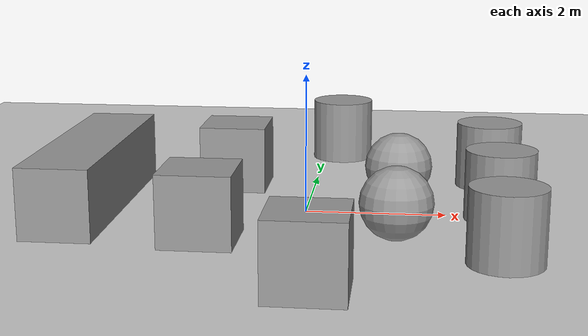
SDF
<sdf version="1.7">
 <world name="default">
  <light name="sun" type="directional">
   <pose>0 0 10 0 -0 0</pose>
   <diffuse>0.8 0.8 0.8 1</diffuse>
   <specular>0.2 0.2 0.2 1</specular>
   <attenuation>
    <range>1000</range>
    <constant>0.9</constant>
    <linear>0.01</linear>
    <quadratic>0.001</quadratic>
   </attenuation>
   <direction>-0.5 0.1 -0.9</direction>
   <spot><inner_angle>0</inner_angle><outer_angle>0</outer_angle><falloff>0</falloff></spot>
  </light>
  <model name="ground_plane">
   <static>1</static>
   <link name="link">
    <collision name="collision">
     <geometry><plane><normal>0 0 1</normal><size>100 100</size></plane></geometry>
     <surface>
      <contact><collide_bitmask>65535</collide_bitmask></contact>
      <friction><ode><mu>100</mu><mu2>50</mu2></ode></friction>
     </surface>
    </collision>
    <visual name="visual">
     <cast_shadows>0</cast_shadows>
     <geometry><plane><normal>0 0 1</normal><size>100 100</size></plane></geometry>
     <material>
      <script><uri>file://media/materials/scripts/gazebo.material</uri><name>Gazebo/Grey</name></script>
     </material>
    </visual>
   </link>
  </model>
  <gravity>0 0 -9.8</gravity>
  <magnetic_field>6e-06 2.3e-05 -4.2e-05</magnetic_field>
  <atmosphere type="adiabatic"/>
  <physics type="ode">
   <max_step_size>0.001</max_step_size>
   <real_time_factor>1</real_time_factor>
   <real_time_update_rate>1000</real_time_update_rate>
  </physics>
  <scene><ambient>0.4 0.4 0.4 1</ambient><background>0.7 0.7 0.7 1</background><shadows>1</shadows></scene>
  <audio><device>default</device></audio>
  <spherical_coordinates>
   <surface_model>EARTH_WGS84</surface_model>
   <latitude_deg>0</latitude_deg>
   <longitude_deg>0</longitude_deg>
   <elevation>0</elevation>
   <heading_deg>0</heading_deg>
  </spherical_coordinates>
  <model name="unit_box">
   <pose>-1.22919 1.42375 0.499995 0 -1e-05 0</pose>
   <link name="link">
    <inertial>
     <mass>1</mass>
     <inertia>
      <ixx>0.166667</ixx>
      <ixy>0</ixy>
      <ixz>0</ixz>
      <iyy>0.166667</iyy>
      <iyz>0</iyz>
      <izz>0.166667</izz>
     </inertia>
    </inertial>
    <collision name="collision"><geometry><box><size>1 1 1</size></box></geometry></collision>
    <visual name="visual">
     <geometry><box><size>1 1 1</size></box></geometry>
     <material>
      <script><name>Gazebo/Grey</name><uri>file://media/materials/scripts/gazebo.material</uri></script>
     </material>
    </visual>
   </link>
  </model>
  <model name="unit_sphere">
   <pose>1.30871 0.862647 0.5 0 -0 0</pose>
   <link name="link">
    <inertial>
     <mass>1</mass>
     <inertia><ixx>0.1</ixx><ixy>0</ixy><ixz>0</ixz><iyy>0.1</iyy><iyz>0</iyz><izz>0.1</izz></inertia>
    </inertial>
    <collision name="collision"><geometry><sphere><radius>0.5</radius></sphere></geometry></collision>
    <visual name="visual">
     <geometry><sphere><radius>0.5</radius></sphere></geometry>
     <material>
      <script><name>Gazebo/Grey</name><uri>file://media/materials/scripts/gazebo.material</uri></script>
     </material>
    </visual>
   </link>
  </model>
  <model name="unit_cylinder">
   <pose>2.69492 -2.06288 0.499992 -3e-06 2e-06 0.010839</pose>
   <link name="link">
    <inertial>
     <mass>1</mass>
     <inertia><ixx>0.145833</ixx><ixy>0</ixy><ixz>0</ixz><iyy>0.145833</iyy><iyz>0</iyz><izz>0.125</izz></inertia>
    </inertial>
    <collision name="collision">
     <geometry><cylinder><radius>0.5</radius><length>1</length></cylinder></geometry>
    </collision>
    <visual name="visual">
     <geometry><cylinder><radius>0.5</radius><length>1</length></cylinder></geometry>
     <material>
      <script><name>Gazebo/Grey</name><uri>file://media/materials/scripts/gazebo.material</uri></script>
     </material>
    </visual>
   </link>
  </model>
  <model name="unit_cylinder_0">
   <pose>2.70231 1.82386 0.499997 3e-06 2e-06 0</pose>
   <link name="link">
    <inertial>
     <mass>1</mass>
     <inertia><ixx>0.145833</ixx><ixy>0</ixy><ixz>0</ixz><iyy>0.145833</iyy><iyz>0</iyz><izz>0.125</izz></inertia>
    </inertial>
    <collision name="collision">
     <geometry><cylinder><radius>0.5</radius><length>1</length></cylinder></geometry>
    </collision>
    <visual name="visual">
     <geometry><cylinder><radius>0.5</radius><length>1</length></cylinder></geometry>
     <material>
      <script><name>Gazebo/Grey</name><uri>file://media/materials/scripts/gazebo.material</uri></script>
     </material>
    </visual>
   </link>
  </model>
  <model name="unit_cylinder_1">
   <pose>2.75115 -0.064508 0.499994 -3e-06 -2e-06 0.000885</pose>
   <link name="link">
    <inertial>
     <mass>1</mass>
     <inertia><ixx>0.145833</ixx><ixy>0</ixy><ixz>0</ixz><iyy>0.145833</iyy><iyz>0</iyz><izz>0.125</izz></inertia>
    </inertial>
    <collision name="collision">
     <geometry><cylinder><radius>0.5</radius><length>1</length></cylinder></geometry>
    </collision>
    <visual name="visual">
     <geometry><cylinder><radius>0.5</radius><length>1</length></cylinder></geometry>
     <material>
      <script><name>Gazebo/Grey</name><uri>file://media/materials/scripts/gazebo.material</uri></script>
     </material>
    </visual>
   </link>
  </model>
  <model name="unit_sphere_0">
   <pose>1.31589 -1.20224 0.5 0 -0 0</pose>
   <link name="link">
    <inertial>
     <mass>1</mass>
     <inertia><ixx>0.1</ixx><ixy>0</ixy><ixz>0</ixz><iyy>0.1</iyy><iyz>0</iyz><izz>0.1</izz></inertia>
    </inertial>
    <collision name="collision"><geometry><sphere><radius>0.5</radius></sphere></geometry></collision>
    <visual name="visual">
     <geometry><sphere><radius>0.5</radius></sphere></geometry>
     <material>
      <script><name>Gazebo/Grey</name><uri>file://media/materials/scripts/gazebo.material</uri></script>
     </material>
    </visual>
   </link>
  </model>
  <model name="unit_box_0">
   <pose>-1.2637 -1.49963 0.499995 -1e-05 -0 -0</pose>
   <link name="link">
    <inertial>
     <mass>1</mass>
     <inertia>
      <ixx>0.166667</ixx>
      <ixy>0</ixy>
      <ixz>0</ixz>
      <iyy>0.166667</iyy>
      <iyz>0</iyz>
      <izz>0.166667</izz>
     </inertia>
    </inertial>
    <collision name="collision"><geometry><box><size>1 1 1</size></box></geometry></collision>
    <visual name="visual">
     <geometry><box><size>1 1 1</size></box></geometry>
     <material>
      <script><name>Gazebo/Grey</name><uri>file://media/materials/scripts/gazebo.material</uri></script>
     </material>
    </visual>
   </link>
  </model>
  <model name="unit_box_1">
   <pose>-3.16853 0.034093 0.499462 0.000288 -0 0</pose>
   <link name="link">
    <inertial>
     <mass>1</mass>
     <inertia>
      <ixx>0.166667</ixx>
      <ixy>0</ixy>
      <ixz>0</ixz>
      <iyy>0.166667</iyy>
      <iyz>0</iyz>
      <izz>0.166667</izz>
     </inertia>
    </inertial>
    <collision name="collision"><geometry><box><size>1 3.73812 1</size></box></geometry></collision>
    <visual name="visual">
     <geometry><box><size>1 3.73812 1</size></box></geometry>
     <material>
      <script><name>Gazebo/Grey</name><uri>file://media/materials/scripts/gazebo.material</uri></script>
     </material>
    </visual>
   </link>
  </model>
  <model name="unit_box_2">
   <pose>0.339447 -3.32187 0.499995 -1e-05 -0 -0</pose>
   <link name="link">
    <inertial>
     <mass>1</mass>
     <inertia>
      <ixx>0.166667</ixx>
      <ixy>0</ixy>
      <ixz>0</ixz>
      <iyy>0.166667</iyy>
      <iyz>0</iyz>
      <izz>0.166667</izz>
     </inertia>
    </inertial>
    <collision name="collision"><geometry><box><size>1 1 1</size></box></geometry></collision>
    <visual name="visual">
     <geometry><box><size>1 1 1</size></box></geometry>
     <material>
      <script><name>Gazebo/Grey</name><uri>file://media/materials/scripts/gazebo.material</uri></script>
     </material>
    </visual>
   </link>
  </model>
  <model name="unit_cylinder_2">
   <pose>0.297818 3.54361 0.499993 -3e-06 -4e-06 -0</pose>
   <link name="link">
    <inertial>
     <mass>1</mass>
     <inertia><ixx>0.145833</ixx><ixy>0</ixy><ixz>0</ixz><iyy>0.145833</iyy><iyz>0</iyz><izz>0.125</izz></inertia>
    </inertial>
    <collision name="collision">
     <geometry><cylinder><radius>0.5</radius><length>1</length></cylinder></geometry>
    </collision>
    <visual name="visual">
     <geometry><cylinder><radius>0.5</radius><length>1</length></cylinder></geometry>
     <material>
      <script><name>Gazebo/Grey</name><uri>file://media/materials/scripts/gazebo.material</uri></script>
     </material>
    </visual>
   </link>
  </model>
 </world>
</sdf>
